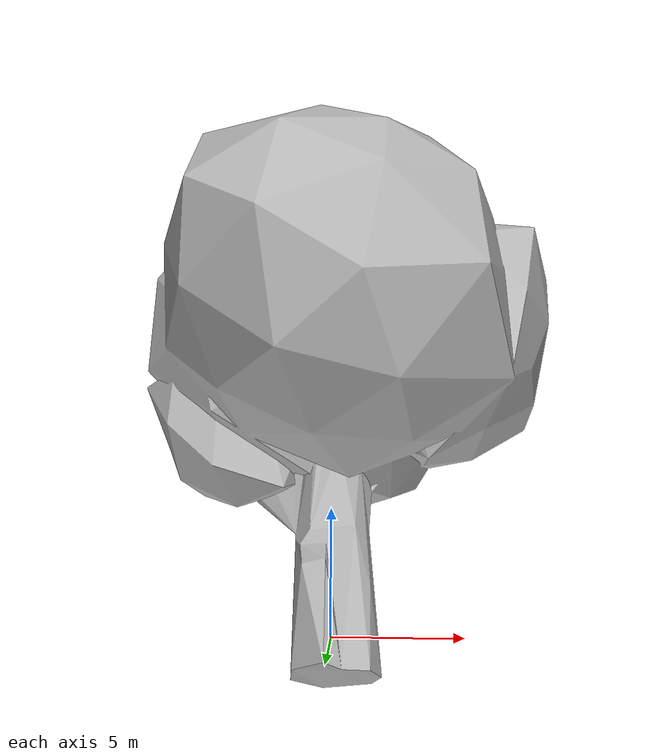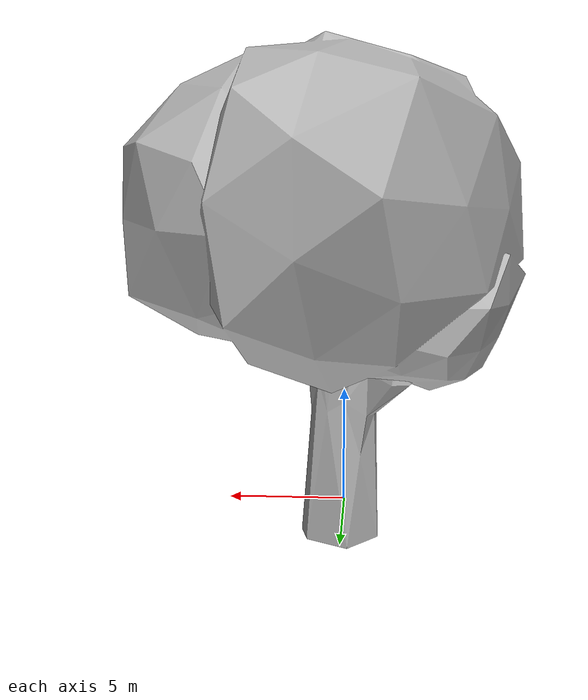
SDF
<?xml version="1.0"?>
<sdf version="1.8">
  <model name="tree_rs1">
    <pose>0 0 0 0 0 0</pose>
    <static>true</static>
    <link name="body">
      <visual name="visual">
        <geometry>
          <mesh>
            <uri>tree.obj</uri>
          </mesh>
        </geometry>
      </visual>
      <collision name="collision">
        <geometry>
          <mesh>
            <uri>tree.obj</uri>
          </mesh>
        </geometry>
      </collision>
    </link>
  </model>
</sdf>
